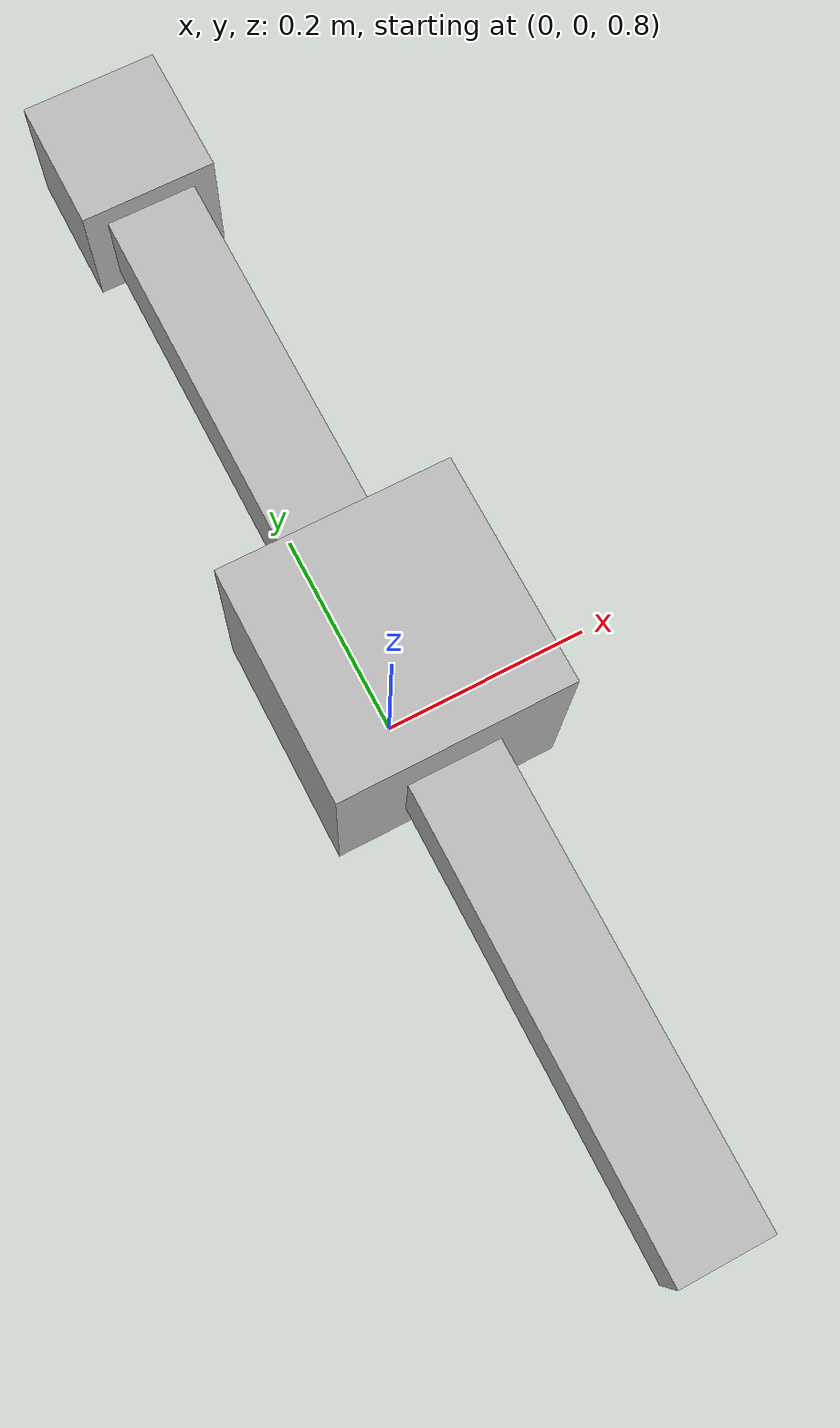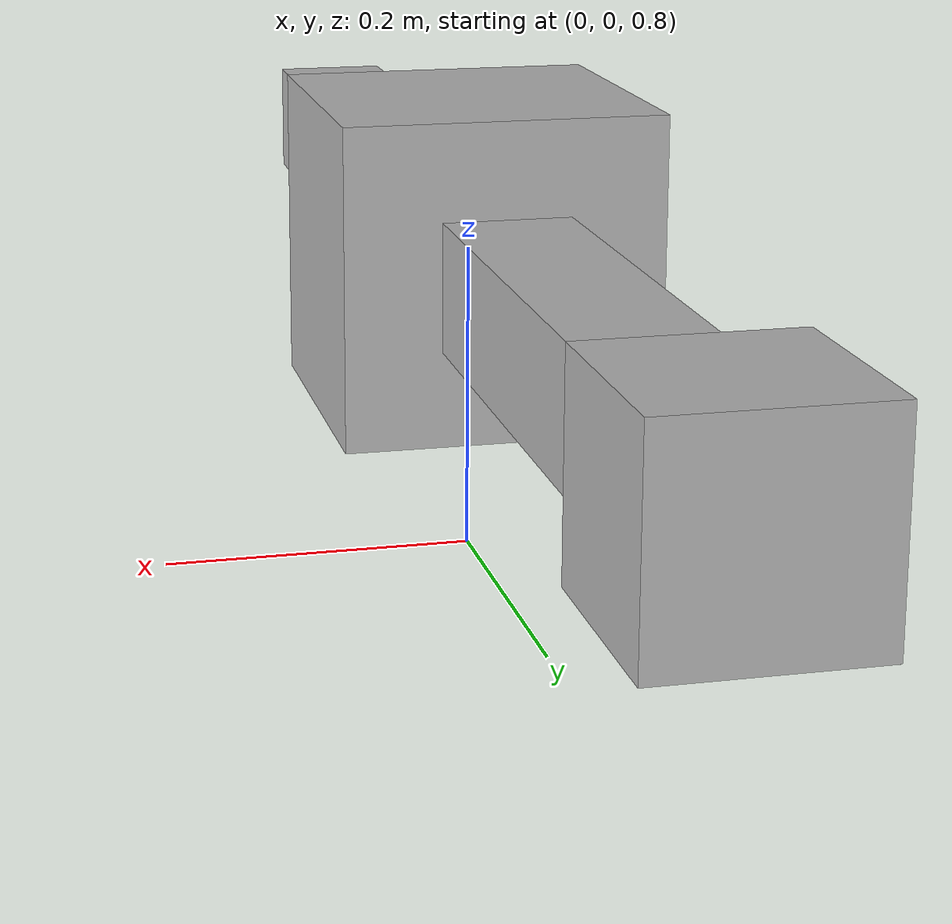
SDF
<?xml version="1.0" ?>
<sdf version="1.9">
  <world name="one_axis_world">

    <physics name="1ms" type="ode">
      <max_step_size>0.001</max_step_size>
      <real_time_factor>1.0</real_time_factor>
    </physics>

    <plugin
      filename="gz-sim-physics-system"
      name="gz::sim::systems::Physics"/>

    <plugin
      filename="gz-sim-scene-broadcaster-system"
      name="gz::sim::systems::SceneBroadcaster"/>

    <model name="one_axis_rig">
      <pose>0 0 1 0 0 0</pose>

      <link name="base">
        <inertial>
          <mass>5.0</mass>
          <inertia>
            <ixx>1.0</ixx>
            <iyy>1.0</iyy>
            <izz>1.0</izz>
          </inertia>
        </inertial>

        <visual name="base_visual">
          <geometry>
            <box>
              <size>0.2 0.2 0.2</size>
            </box>
          </geometry>
        </visual>

        <collision name="base_collision">
          <geometry>
            <box>
              <size>0.2 0.2 0.2</size>
            </box>
          </geometry>
        </collision>
      </link>

      <joint name="world_to_base" type="fixed">
        <parent>world</parent>
        <child>base</child>
      </joint>

      <link name="beam">
        <pose>0 0 0 0 0 0</pose>

        <inertial>
          <mass>0.5</mass>
          <inertia>
            <ixx>0.02</ixx>
            <iyy>0.02</iyy>
            <izz>0.02</izz>
          </inertia>
        </inertial>

        <visual name="beam_visual">
          <geometry>
            <box>
              <size>0.08 1.0 0.08</size>
            </box>
          </geometry>
        </visual>

        <visual name="tip_visual">
          <pose>0 0.5 0 0 0 0</pose>
          <geometry>
            <box>
              <size>0.12 0.12 0.12</size>
            </box>
          </geometry>
        </visual>

        <collision name="beam_collision">
          <geometry>
            <box>
              <size>0.08 1.0 0.08</size>
            </box>
          </geometry>
        </collision>
      </link>

      <joint name="roll_joint" type="revolute">
        <parent>base</parent>
        <child>beam</child>

        <axis>
          <xyz>1 0 0</xyz>
          <limit>
            <lower>-1.5708</lower>
            <upper>1.5708</upper>
            <effort>10.0</effort>
            <velocity>20.0</velocity>
          </limit>
          <dynamics>
            <damping>0.02</damping>
          </dynamics>
        </axis>
      </joint>

      <plugin
        filename="libHilPlugin"
        name="hil_plugin::HilPlugin">

        <joint_name>roll_joint</joint_name>
        <serial_port>/dev/cu.usbmodem1103</serial_port>
        <baud>115200</baud>

        <!-- Torque scale applied from motor difference -->
        <max_torque>0.15</max_torque>

        <!-- If angle runs away, set this to -1 -->
        <torque_sign>1.0</torque_sign>

        <!-- MAVLink HIL_SENSOR send rate -->
        <hil_rate_hz>100</hil_rate_hz>

        <disturbance_torque>0.08</disturbance_torque>
        <disturbance_start>0.2</disturbance_start>
        <disturbance_end>0.6</disturbance_end>
      </plugin>

    </model>
  </world>
</sdf>
